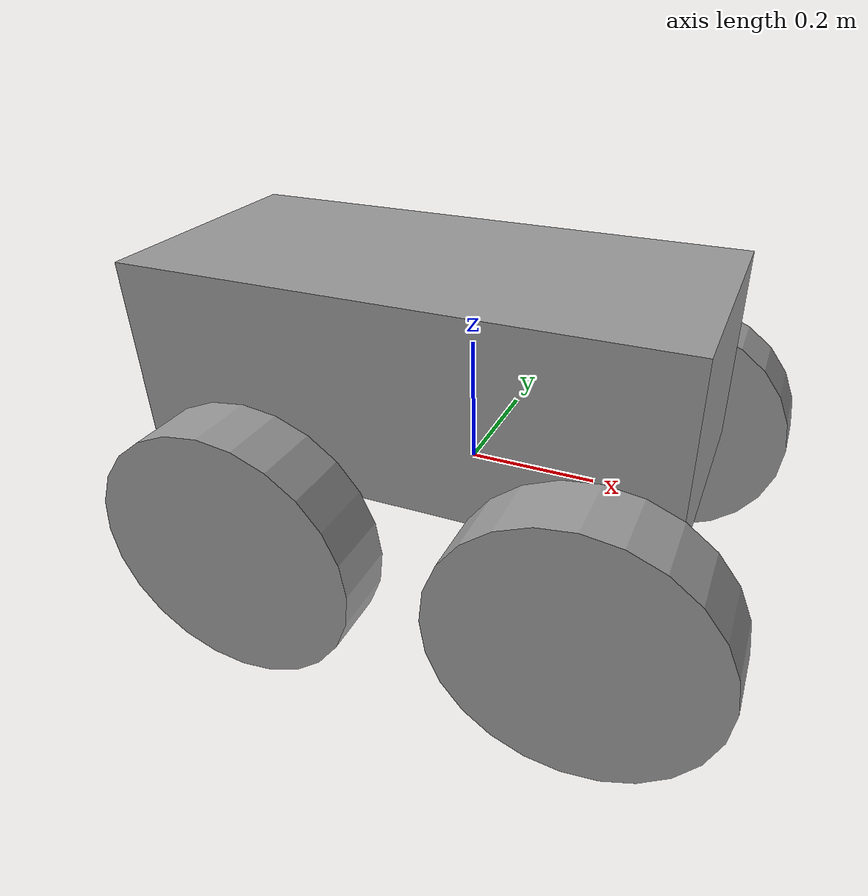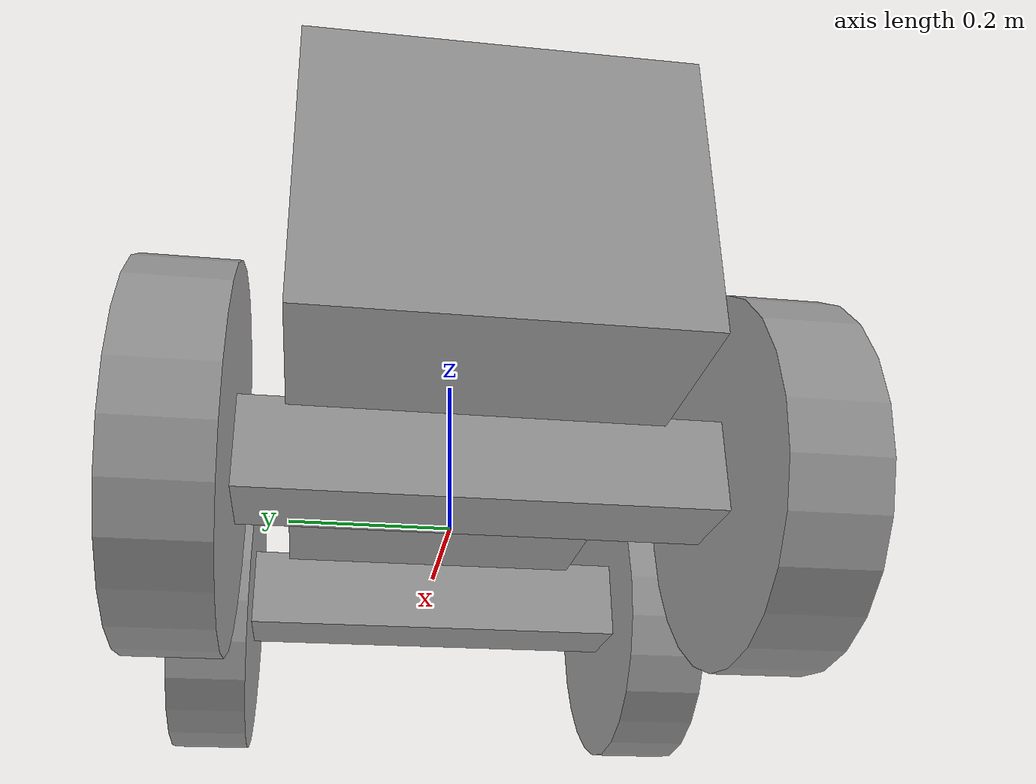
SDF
<?xml version='1.0'?>
<sdf version='1.6'>
  <model name='robot2'>
    <link name='link_0'>
      <pose frame=''>0.224868 -0.002113 -0.027994 0 -0 0</pose>
      <inertial>
        <mass>1</mass>
        <inertia>
          <ixx>0.166667</ixx>
          <ixy>0</ixy>
          <ixz>0</ixz>
          <iyy>0.166667</iyy>
          <iyz>0</iyz>
          <izz>0.166667</izz>
        </inertia>
        <pose frame=''>0 0 0 0 -0 0</pose>
      </inertial>
      <gravity>1</gravity>
      <self_collide>0</self_collide>
      <kinematic>0</kinematic>
      <visual name='visual'>
        <pose frame=''>0 0 0 0 -0 0</pose>
        <geometry>
          <box>
            <size>0.1 0.5 0.1</size>
          </box>
        </geometry>
        <material>
          <lighting>1</lighting>
          <script>
            <uri>file://media/materials/scripts/gazebo.material</uri>
            <name>Gazebo/Grey</name>
          </script>
          <shader type='pixel'>
            <normal_map>__default__</normal_map>
          </shader>
          <ambient>0.3 0.3 0.3 1</ambient>
          <diffuse>0.7 0.7 0.7 1</diffuse>
          <specular>0.01 0.01 0.01 1</specular>
          <emissive>0 0 0 1</emissive>
        </material>
        <transparency>0</transparency>
        <cast_shadows>1</cast_shadows>
      </visual>
      <collision name='collision'>
        <laser_retro>0</laser_retro>
        <max_contacts>10</max_contacts>
        <pose frame=''>0 0 0 0 -0 0</pose>
        <geometry>
          <box>
            <size>0.1 0.5 0.1</size>
          </box>
        </geometry>
        <surface>
          <friction>
            <ode>
              <mu>1</mu>
              <mu2>1</mu2>
              <fdir1>0 0 0</fdir1>
              <slip1>0</slip1>
              <slip2>0</slip2>
            </ode>
            <torsional>
              <coefficient>1</coefficient>
              <patch_radius>0</patch_radius>
              <surface_radius>0</surface_radius>
              <use_patch_radius>1</use_patch_radius>
              <ode>
                <slip>0</slip>
              </ode>
            </torsional>
          </friction>
          <bounce>
            <restitution_coefficient>0</restitution_coefficient>
            <threshold>1e+06</threshold>
          </bounce>
          <contact>
            <collide_without_contact>0</collide_without_contact>
            <collide_without_contact_bitmask>1</collide_without_contact_bitmask>
            <collide_bitmask>1</collide_bitmask>
            <ode>
              <soft_cfm>0</soft_cfm>
              <soft_erp>0.2</soft_erp>
              <kp>1e+13</kp>
              <kd>1</kd>
              <max_vel>0.01</max_vel>
              <min_depth>0</min_depth>
            </ode>
            <bullet>
              <split_impulse>1</split_impulse>
              <split_impulse_penetration_threshold>-0.01</split_impulse_penetration_threshold>
              <soft_cfm>0</soft_cfm>
              <soft_erp>0.2</soft_erp>
              <kp>1e+13</kp>
              <kd>1</kd>
            </bullet>
          </contact>
        </surface>
      </collision>
    </link>
    <link name='link_0_clone'>
      <pose frame=''>-0.23703 3.5e-05 -0.027994 0 -0 0</pose>
      <inertial>
        <mass>1</mass>
        <inertia>
          <ixx>0.166667</ixx>
          <ixy>0</ixy>
          <ixz>0</ixz>
          <iyy>0.166667</iyy>
          <iyz>0</iyz>
          <izz>0.166667</izz>
        </inertia>
        <pose frame=''>0 0 0 0 -0 0</pose>
      </inertial>
      <self_collide>0</self_collide>
      <kinematic>0</kinematic>
      <visual name='visual'>
        <pose frame=''>0 0 0 0 -0 0</pose>
        <geometry>
          <box>
            <size>0.1 0.5 0.1</size>
          </box>
        </geometry>
        <material>
          <lighting>1</lighting>
          <script>
            <uri>file://media/materials/scripts/gazebo.material</uri>
            <name>Gazebo/Grey</name>
          </script>
          <shader type='pixel'>
            <normal_map>__default__</normal_map>
          </shader>
          <ambient>0.3 0.3 0.3 1</ambient>
          <diffuse>0.7 0.7 0.7 1</diffuse>
          <specular>0.01 0.01 0.01 1</specular>
          <emissive>0 0 0 1</emissive>
        </material>
        <transparency>0</transparency>
        <cast_shadows>1</cast_shadows>
      </visual>
      <collision name='collision'>
        <laser_retro>0</laser_retro>
        <max_contacts>10</max_contacts>
        <pose frame=''>0 0 0 0 -0 0</pose>
        <geometry>
          <box>
            <size>0.1 0.5 0.1</size>
          </box>
        </geometry>
        <surface>
          <friction>
            <ode>
              <mu>1</mu>
              <mu2>1</mu2>
              <fdir1>0 0 0</fdir1>
              <slip1>0</slip1>
              <slip2>0</slip2>
            </ode>
            <torsional>
              <coefficient>1</coefficient>
              <patch_radius>0</patch_radius>
              <surface_radius>0</surface_radius>
              <use_patch_radius>1</use_patch_radius>
              <ode>
                <slip>0</slip>
              </ode>
            </torsional>
          </friction>
          <bounce>
            <restitution_coefficient>0</restitution_coefficient>
            <threshold>1e+06</threshold>
          </bounce>
          <contact>
            <collide_without_contact>0</collide_without_contact>
            <collide_without_contact_bitmask>1</collide_without_contact_bitmask>
            <collide_bitmask>1</collide_bitmask>
            <ode>
              <soft_cfm>0</soft_cfm>
              <soft_erp>0.2</soft_erp>
              <kp>1e+13</kp>
              <kd>1</kd>
              <max_vel>0.01</max_vel>
              <min_depth>0</min_depth>
            </ode>
            <bullet>
              <split_impulse>1</split_impulse>
              <split_impulse_penetration_threshold>-0.01</split_impulse_penetration_threshold>
              <soft_cfm>0</soft_cfm>
              <soft_erp>0.2</soft_erp>
              <kp>1e+13</kp>
              <kd>1</kd>
            </bullet>
          </contact>
        </surface>
      </collision>
    </link>
    <link name='link_1'>
      <pose frame=''>-0.053515 0.006233 0.167963 0 -0 0</pose>
      <inertial>
        <mass>0.100962</mass>
        <inertia>
          <ixx>0.00209101</ixx>
          <ixy>0</ixy>
          <ixz>0</ixz>
          <iyy>0.00666856</iyy>
          <iyz>0</iyz>
          <izz>0.0071497</izz>
        </inertia>
        <pose frame=''>0 0 0 0 -0 0</pose>
      </inertial>
      <gravity>1</gravity>
      <self_collide>0</self_collide>
      <kinematic>0</kinematic>
      <visual name='visual'>
        <pose frame=''>0 0 0 0 -0 0</pose>
        <geometry>
          <box>
            <size>0.834822 0.39097 0.309308</size>
          </box>
        </geometry>
        <material>
          <lighting>1</lighting>
          <script>
            <uri>file://media/materials/scripts/gazebo.material</uri>
            <name>Gazebo/Grey</name>
          </script>
          <shader type='pixel'>
            <normal_map>__default__</normal_map>
          </shader>
          <ambient>0.3 0.3 0.3 1</ambient>
          <diffuse>0.7 0.7 0.7 1</diffuse>
          <specular>0.01 0.01 0.01 1</specular>
          <emissive>0 0 0 1</emissive>
        </material>
        <transparency>0</transparency>
        <cast_shadows>1</cast_shadows>
      </visual>
      <collision name='collision'>
        <laser_retro>0</laser_retro>
        <max_contacts>10</max_contacts>
        <pose frame=''>0 0 0 0 -0 0</pose>
        <geometry>
          <box>
            <size>0.834822 0.39097 0.309308</size>
          </box>
        </geometry>
        <surface>
          <friction>
            <ode>
              <mu>1</mu>
              <mu2>1</mu2>
              <fdir1>0 0 0</fdir1>
              <slip1>0</slip1>
              <slip2>0</slip2>
            </ode>
            <torsional>
              <coefficient>1</coefficient>
              <patch_radius>0</patch_radius>
              <surface_radius>0</surface_radius>
              <use_patch_radius>1</use_patch_radius>
              <ode>
                <slip>0</slip>
              </ode>
            </torsional>
          </friction>
          <bounce>
            <restitution_coefficient>0</restitution_coefficient>
            <threshold>1e+06</threshold>
          </bounce>
          <contact>
            <collide_without_contact>0</collide_without_contact>
            <collide_without_contact_bitmask>1</collide_without_contact_bitmask>
            <collide_bitmask>1</collide_bitmask>
            <ode>
              <soft_cfm>0</soft_cfm>
              <soft_erp>0.2</soft_erp>
              <kp>1e+13</kp>
              <kd>1</kd>
              <max_vel>0.01</max_vel>
              <min_depth>0</min_depth>
            </ode>
            <bullet>
              <split_impulse>1</split_impulse>
              <split_impulse_penetration_threshold>-0.01</split_impulse_penetration_threshold>
              <soft_cfm>0</soft_cfm>
              <soft_erp>0.2</soft_erp>
              <kp>1e+13</kp>
              <kd>1</kd>
            </bullet>
          </contact>
        </surface>
      </collision>
    </link>
    <link name='link_2'>
      <pose frame=''>-0.23703 -0.299984 -0.027998 1.5707 -0 0</pose>
      <inertial>
        <mass>1</mass>
        <inertia>
          <ixx>0.145833</ixx>
          <ixy>0</ixy>
          <ixz>0</ixz>
          <iyy>0.145833</iyy>
          <iyz>0</iyz>
          <izz>0.125</izz>
        </inertia>
        <pose frame=''>0 0 0 0 -0 0</pose>
      </inertial>
      <gravity>1</gravity>
      <self_collide>0</self_collide>
      <kinematic>0</kinematic>
      <visual name='visual'>
        <pose frame=''>0 0 0 0 -0 0</pose>
        <geometry>
          <cylinder>
            <radius>0.2</radius>
            <length>0.1</length>
          </cylinder>
        </geometry>
        <material>
          <lighting>1</lighting>
          <script>
            <uri>file://media/materials/scripts/gazebo.material</uri>
            <name>Gazebo/Grey</name>
          </script>
          <shader type='pixel'>
            <normal_map>__default__</normal_map>
          </shader>
          <ambient>0.3 0.3 0.3 1</ambient>
          <diffuse>0.7 0.7 0.7 1</diffuse>
          <specular>0.01 0.01 0.01 1</specular>
          <emissive>0 0 0 1</emissive>
        </material>
        <transparency>0</transparency>
        <cast_shadows>1</cast_shadows>
      </visual>
      <collision name='collision'>
        <laser_retro>0</laser_retro>
        <max_contacts>10</max_contacts>
        <pose frame=''>0 0 0 0 -0 0</pose>
        <geometry>
          <cylinder>
            <radius>0.2</radius>
            <length>0.1</length>
          </cylinder>
        </geometry>
        <surface>
          <friction>
            <ode>
              <mu>1</mu>
              <mu2>1</mu2>
              <fdir1>0 0 0</fdir1>
              <slip1>0</slip1>
              <slip2>0</slip2>
            </ode>
            <torsional>
              <coefficient>1</coefficient>
              <patch_radius>0</patch_radius>
              <surface_radius>0</surface_radius>
              <use_patch_radius>1</use_patch_radius>
              <ode>
                <slip>0</slip>
              </ode>
            </torsional>
          </friction>
          <bounce>
            <restitution_coefficient>0</restitution_coefficient>
            <threshold>1e+06</threshold>
          </bounce>
          <contact>
            <collide_without_contact>0</collide_without_contact>
            <collide_without_contact_bitmask>1</collide_without_contact_bitmask>
            <collide_bitmask>1</collide_bitmask>
            <ode>
              <soft_cfm>0</soft_cfm>
              <soft_erp>0.2</soft_erp>
              <kp>1e+13</kp>
              <kd>1</kd>
              <max_vel>0.01</max_vel>
              <min_depth>0</min_depth>
            </ode>
            <bullet>
              <split_impulse>1</split_impulse>
              <split_impulse_penetration_threshold>-0.01</split_impulse_penetration_threshold>
              <soft_cfm>0</soft_cfm>
              <soft_erp>0.2</soft_erp>
              <kp>1e+13</kp>
              <kd>1</kd>
            </bullet>
          </contact>
        </surface>
      </collision>
    </link>
    <link name='link_2_clone'>
      <pose frame=''>0.269868 -0.302132 -0.027994 1.5707 -0 0</pose>
      <inertial>
        <mass>1</mass>
        <inertia>
          <ixx>0.145833</ixx>
          <ixy>0</ixy>
          <ixz>0</ixz>
          <iyy>0.145833</iyy>
          <iyz>0</iyz>
          <izz>0.125</izz>
        </inertia>
        <pose frame=''>0 0 0 0 -0 0</pose>
      </inertial>
      <self_collide>0</self_collide>
      <kinematic>0</kinematic>
      <visual name='visual'>
        <pose frame=''>0 0 0 0 -0 0</pose>
        <geometry>
          <cylinder>
            <radius>0.2</radius>
            <length>0.1</length>
          </cylinder>
        </geometry>
        <material>
          <lighting>1</lighting>
          <script>
            <uri>file://media/materials/scripts/gazebo.material</uri>
            <name>Gazebo/Grey</name>
          </script>
          <shader type='pixel'>
            <normal_map>__default__</normal_map>
          </shader>
          <ambient>0.3 0.3 0.3 1</ambient>
          <diffuse>0.7 0.7 0.7 1</diffuse>
          <specular>0.01 0.01 0.01 1</specular>
          <emissive>0 0 0 1</emissive>
        </material>
        <transparency>0</transparency>
        <cast_shadows>1</cast_shadows>
      </visual>
      <collision name='collision'>
        <laser_retro>0</laser_retro>
        <max_contacts>10</max_contacts>
        <pose frame=''>0 0 0 0 -0 0</pose>
        <geometry>
          <cylinder>
            <radius>0.2</radius>
            <length>0.1</length>
          </cylinder>
        </geometry>
        <surface>
          <friction>
            <ode>
              <mu>1</mu>
              <mu2>1</mu2>
              <fdir1>0 0 0</fdir1>
              <slip1>0</slip1>
              <slip2>0</slip2>
            </ode>
            <torsional>
              <coefficient>1</coefficient>
              <patch_radius>0</patch_radius>
              <surface_radius>0</surface_radius>
              <use_patch_radius>1</use_patch_radius>
              <ode>
                <slip>0</slip>
              </ode>
            </torsional>
          </friction>
          <bounce>
            <restitution_coefficient>0</restitution_coefficient>
            <threshold>1e+06</threshold>
          </bounce>
          <contact>
            <collide_without_contact>0</collide_without_contact>
            <collide_without_contact_bitmask>1</collide_without_contact_bitmask>
            <collide_bitmask>1</collide_bitmask>
            <ode>
              <soft_cfm>0</soft_cfm>
              <soft_erp>0.2</soft_erp>
              <kp>1e+13</kp>
              <kd>1</kd>
              <max_vel>0.01</max_vel>
              <min_depth>0</min_depth>
            </ode>
            <bullet>
              <split_impulse>1</split_impulse>
              <split_impulse_penetration_threshold>-0.01</split_impulse_penetration_threshold>
              <soft_cfm>0</soft_cfm>
              <soft_erp>0.2</soft_erp>
              <kp>1e+13</kp>
              <kd>1</kd>
            </bullet>
          </contact>
        </surface>
      </collision>
    </link>
    <link name='link_2_clone_0'>
      <pose frame=''>-0.23703 0.300055 -0.027994 1.5707 -0 0</pose>
      <inertial>
        <mass>1</mass>
        <inertia>
          <ixx>0.145833</ixx>
          <ixy>0</ixy>
          <ixz>0</ixz>
          <iyy>0.145833</iyy>
          <iyz>0</iyz>
          <izz>0.125</izz>
        </inertia>
        <pose frame=''>0 0 0 0 -0 0</pose>
      </inertial>
      <self_collide>0</self_collide>
      <kinematic>0</kinematic>
      <visual name='visual'>
        <pose frame=''>0 0 0 0 -0 0</pose>
        <geometry>
          <cylinder>
            <radius>0.2</radius>
            <length>0.1</length>
          </cylinder>
        </geometry>
        <material>
          <lighting>1</lighting>
          <script>
            <uri>file://media/materials/scripts/gazebo.material</uri>
            <name>Gazebo/Grey</name>
          </script>
          <shader type='pixel'>
            <normal_map>__default__</normal_map>
          </shader>
          <ambient>0.3 0.3 0.3 1</ambient>
          <diffuse>0.7 0.7 0.7 1</diffuse>
          <specular>0.01 0.01 0.01 1</specular>
          <emissive>0 0 0 1</emissive>
        </material>
        <transparency>0</transparency>
        <cast_shadows>1</cast_shadows>
      </visual>
      <collision name='collision'>
        <laser_retro>0</laser_retro>
        <max_contacts>10</max_contacts>
        <pose frame=''>0 0 0 0 -0 0</pose>
        <geometry>
          <cylinder>
            <radius>0.2</radius>
            <length>0.1</length>
          </cylinder>
        </geometry>
        <surface>
          <friction>
            <ode>
              <mu>1</mu>
              <mu2>1</mu2>
              <fdir1>0 0 0</fdir1>
              <slip1>0</slip1>
              <slip2>0</slip2>
            </ode>
            <torsional>
              <coefficient>1</coefficient>
              <patch_radius>0</patch_radius>
              <surface_radius>0</surface_radius>
              <use_patch_radius>1</use_patch_radius>
              <ode>
                <slip>0</slip>
              </ode>
            </torsional>
          </friction>
          <bounce>
            <restitution_coefficient>0</restitution_coefficient>
            <threshold>1e+06</threshold>
          </bounce>
          <contact>
            <collide_without_contact>0</collide_without_contact>
            <collide_without_contact_bitmask>1</collide_without_contact_bitmask>
            <collide_bitmask>1</collide_bitmask>
            <ode>
              <soft_cfm>0</soft_cfm>
              <soft_erp>0.2</soft_erp>
              <kp>1e+13</kp>
              <kd>1</kd>
              <max_vel>0.01</max_vel>
              <min_depth>0</min_depth>
            </ode>
            <bullet>
              <split_impulse>1</split_impulse>
              <split_impulse_penetration_threshold>-0.01</split_impulse_penetration_threshold>
              <soft_cfm>0</soft_cfm>
              <soft_erp>0.2</soft_erp>
              <kp>1e+13</kp>
              <kd>1</kd>
            </bullet>
          </contact>
        </surface>
      </collision>
    </link>
    <link name='link_2_clone_1'>
      <pose frame=''>0.269868 0.297906 -0.027994 1.5707 -0 0</pose>
      <inertial>
        <mass>1</mass>
        <inertia>
          <ixx>0.145833</ixx>
          <ixy>0</ixy>
          <ixz>0</ixz>
          <iyy>0.145833</iyy>
          <iyz>0</iyz>
          <izz>0.125</izz>
        </inertia>
        <pose frame=''>0 0 0 0 -0 0</pose>
      </inertial>
      <self_collide>0</self_collide>
      <kinematic>0</kinematic>
      <visual name='visual'>
        <pose frame=''>0 0 0 0 -0 0</pose>
        <geometry>
          <cylinder>
            <radius>0.2</radius>
            <length>0.1</length>
          </cylinder>
        </geometry>
        <material>
          <lighting>1</lighting>
          <script>
            <uri>file://media/materials/scripts/gazebo.material</uri>
            <name>Gazebo/Grey</name>
          </script>
          <shader type='pixel'>
            <normal_map>__default__</normal_map>
          </shader>
          <ambient>0.3 0.3 0.3 1</ambient>
          <diffuse>0.7 0.7 0.7 1</diffuse>
          <specular>0.01 0.01 0.01 1</specular>
          <emissive>0 0 0 1</emissive>
        </material>
        <transparency>0</transparency>
        <cast_shadows>1</cast_shadows>
      </visual>
      <collision name='collision'>
        <laser_retro>0</laser_retro>
        <max_contacts>10</max_contacts>
        <pose frame=''>0 0 0 0 -0 0</pose>
        <geometry>
          <cylinder>
            <radius>0.2</radius>
            <length>0.1</length>
          </cylinder>
        </geometry>
        <surface>
          <friction>
            <ode>
              <mu>1</mu>
              <mu2>1</mu2>
              <fdir1>0 0 0</fdir1>
              <slip1>0</slip1>
              <slip2>0</slip2>
            </ode>
            <torsional>
              <coefficient>1</coefficient>
              <patch_radius>0</patch_radius>
              <surface_radius>0</surface_radius>
              <use_patch_radius>1</use_patch_radius>
              <ode>
                <slip>0</slip>
              </ode>
            </torsional>
          </friction>
          <bounce>
            <restitution_coefficient>0</restitution_coefficient>
            <threshold>1e+06</threshold>
          </bounce>
          <contact>
            <collide_without_contact>0</collide_without_contact>
            <collide_without_contact_bitmask>1</collide_without_contact_bitmask>
            <collide_bitmask>1</collide_bitmask>
            <ode>
              <soft_cfm>0</soft_cfm>
              <soft_erp>0.2</soft_erp>
              <kp>1e+13</kp>
              <kd>1</kd>
              <max_vel>0.01</max_vel>
              <min_depth>0</min_depth>
            </ode>
            <bullet>
              <split_impulse>1</split_impulse>
              <split_impulse_penetration_threshold>-0.01</split_impulse_penetration_threshold>
              <soft_cfm>0</soft_cfm>
              <soft_erp>0.2</soft_erp>
              <kp>1e+13</kp>
              <kd>1</kd>
            </bullet>
          </contact>
        </surface>
      </collision>
    </link>
    <joint name='link_0_JOINT_0' type='revolute'>
      <parent>link_0</parent>
      <child>link_2_clone</child>
      <pose frame=''>0 0 0 0 -0 0</pose>
      <axis>
        <xyz>0 0 1</xyz>
        <use_parent_model_frame>0</use_parent_model_frame>
        <limit>
          <lower>-1.79769e+308</lower>
          <upper>1.79769e+308</upper>
          <effort>-1</effort>
          <velocity>-1</velocity>
        </limit>
        <dynamics>
          <spring_reference>0</spring_reference>
          <spring_stiffness>0</spring_stiffness>
          <damping>0</damping>
        </dynamics>
      </axis>
      <physics>
        <ode>
          <limit>
            <cfm>0</cfm>
            <erp>0.2</erp>
          </limit>
          <suspension>
            <cfm>0</cfm>
            <erp>0.2</erp>
          </suspension>
        </ode>
      </physics>
    </joint>
    <joint name='link_0_JOINT_1' type='revolute'>
      <parent>link_0</parent>
      <child>link_2_clone_1</child>
      <pose frame=''>0 0 0 0 -0 0</pose>
      <axis>
        <xyz>0 0 1</xyz>
        <use_parent_model_frame>0</use_parent_model_frame>
        <limit>
          <lower>-1.79769e+308</lower>
          <upper>1.79769e+308</upper>
          <effort>-1</effort>
          <velocity>-1</velocity>
        </limit>
        <dynamics>
          <spring_reference>0</spring_reference>
          <spring_stiffness>0</spring_stiffness>
          <damping>0</damping>
        </dynamics>
      </axis>
      <physics>
        <ode>
          <limit>
            <cfm>0</cfm>
            <erp>0.2</erp>
          </limit>
          <suspension>
            <cfm>0</cfm>
            <erp>0.2</erp>
          </suspension>
        </ode>
      </physics>
    </joint>
    <joint name='link_0_clone_JOINT_2' type='revolute'>
      <parent>link_0_clone</parent>
      <child>link_2</child>
      <pose frame=''>0 0 0 0 -0 0</pose>
      <axis>
        <xyz>0 0 1</xyz>
        <use_parent_model_frame>0</use_parent_model_frame>
        <limit>
          <lower>-1.79769e+308</lower>
          <upper>1.79769e+308</upper>
          <effort>-1</effort>
          <velocity>-1</velocity>
        </limit>
        <dynamics>
          <spring_reference>0</spring_reference>
          <spring_stiffness>0</spring_stiffness>
          <damping>0</damping>
        </dynamics>
      </axis>
      <physics>
        <ode>
          <limit>
            <cfm>0</cfm>
            <erp>0.2</erp>
          </limit>
          <suspension>
            <cfm>0</cfm>
            <erp>0.2</erp>
          </suspension>
        </ode>
      </physics>
    </joint>
    <joint name='link_0_clone_JOINT_3' type='revolute'>
      <parent>link_0_clone</parent>
      <child>link_2_clone_0</child>
      <pose frame=''>0 0 0 0 -0 0</pose>
      <axis>
        <xyz>0 0 1</xyz>
        <use_parent_model_frame>0</use_parent_model_frame>
        <limit>
          <lower>-1.79769e+308</lower>
          <upper>1.79769e+308</upper>
          <effort>-1</effort>
          <velocity>-1</velocity>
        </limit>
        <dynamics>
          <spring_reference>0</spring_reference>
          <spring_stiffness>0</spring_stiffness>
          <damping>0</damping>
        </dynamics>
      </axis>
      <physics>
        <ode>
          <limit>
            <cfm>0</cfm>
            <erp>0.2</erp>
          </limit>
          <suspension>
            <cfm>0</cfm>
            <erp>0.2</erp>
          </suspension>
        </ode>
      </physics>
    </joint>
    <joint name='link_1_JOINT_4' type='fixed'>
      <parent>link_1</parent>
      <child>link_0</child>
      <pose frame=''>0 0 0 0 -0 0</pose>
      <physics>
        <ode>
          <limit>
            <cfm>0</cfm>
            <erp>0.2</erp>
          </limit>
          <suspension>
            <cfm>0</cfm>
            <erp>0.2</erp>
          </suspension>
        </ode>
      </physics>
    </joint>
    <joint name='link_1_JOINT_5' type='fixed'>
      <parent>link_1</parent>
      <child>link_0_clone</child>
      <pose frame=''>0 0 0 0 -0 0</pose>
      <physics>
        <ode>
          <limit>
            <cfm>0</cfm>
            <erp>0.2</erp>
          </limit>
          <suspension>
            <cfm>0</cfm>
            <erp>0.2</erp>
          </suspension>
        </ode>
      </physics>
    </joint>
    <static>0</static>
    <allow_auto_disable>1</allow_auto_disable>
  </model>
</sdf>
